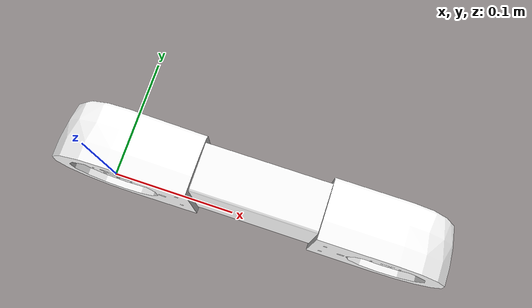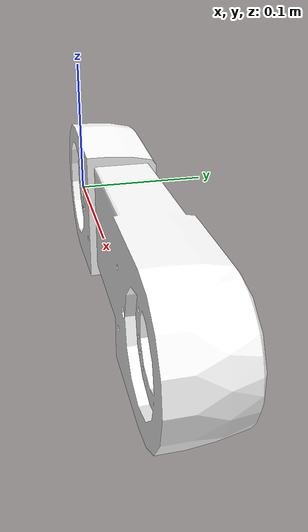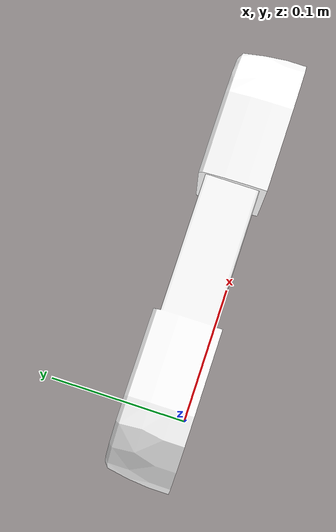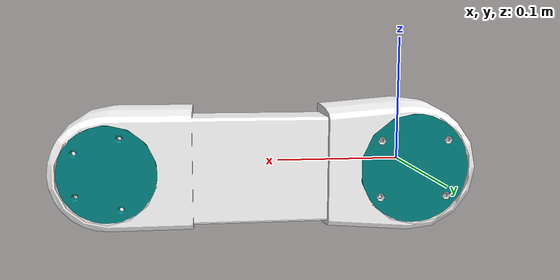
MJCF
<mujoco model="l2">
  <default>
    <default class="visual">
      <geom group="2" type="mesh" contype="0" conaffinity="0"/>
    </default>
    <default class="collision">
      <geom group="3" type="mesh"/>
    </default>
  </default>
  <asset>
    <material name="DEFAULT_MTL" specular="0.0" shininess="0.25" rgba="0.800000 0.800000 0.800000 1.000000"/>
    <material name="MTL0.010" specular="0.0" shininess="0.25" rgba="1.000000 1.000000 1.000000 1.000000"/>
    <material name="MTL1.004" specular="0.0" shininess="0.25" rgba="0.000000 0.502000 0.502000 1.000000"/>
    <mesh file="l2_0.obj"/>
    <mesh file="l2_1.obj"/>
    <mesh file="l2_2.obj"/>
  </asset>
  <worldbody>
    <body name="l2">
      <geom mesh="l2_0" material="DEFAULT_MTL" class="visual"/>
      <geom mesh="l2_1" material="MTL1.004" class="visual"/>
      <geom mesh="l2_2" material="MTL0.010" class="visual"/>
      <geom mesh="l2_0" class="collision"/>
      <geom mesh="l2_1" class="collision"/>
      <geom mesh="l2_2" class="collision"/>
    </body>
  </worldbody>
</mujoco>
